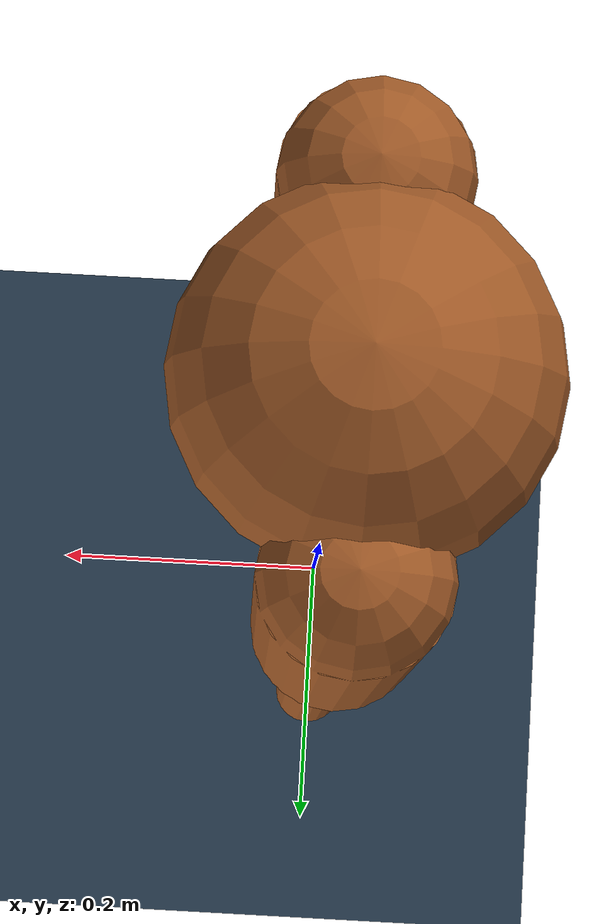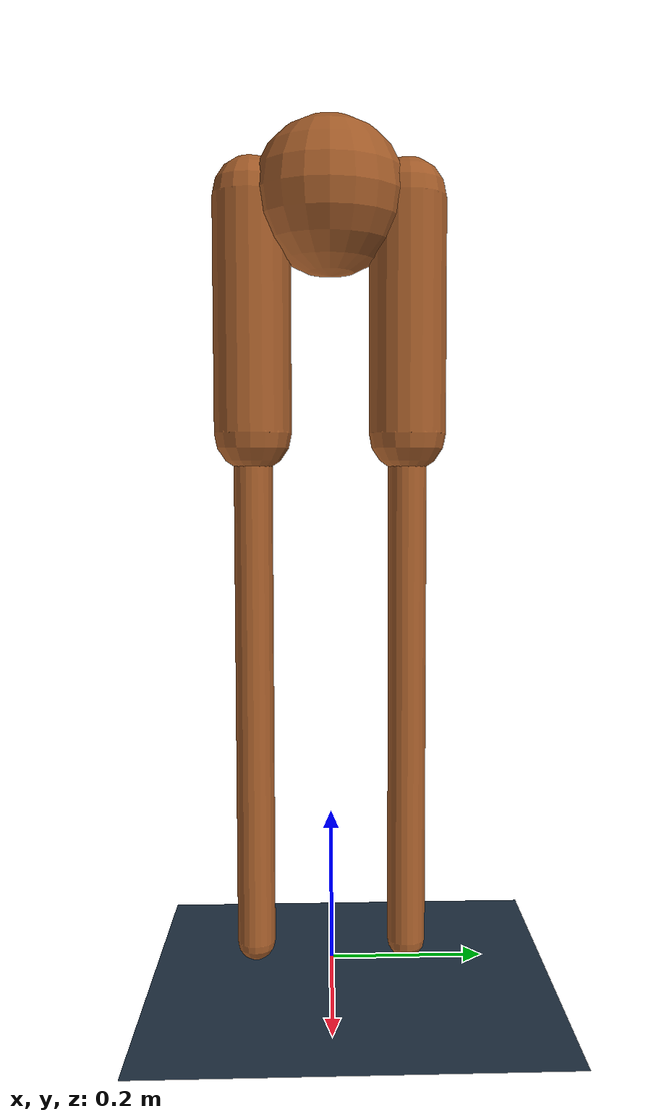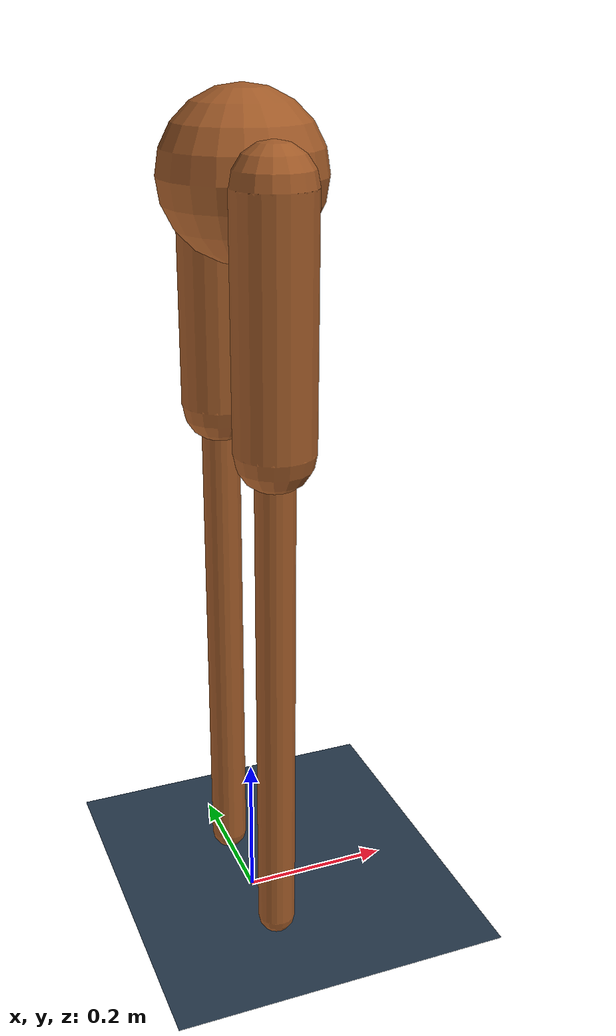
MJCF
<mujoco model='planar-biped'>
  <compiler inertiafromgeom='false' angle='radian' eulerseq='zyx'/>

  <default>
    <joint limited='true'/>
    <motor forcelimited='true'/>
    <geom contype='0' conaffinity='0' condim='1' material='geom'/>
    <!-- margin='0.001' solref='.02 1' solimp='.8 .8 .01' -->
  </default>

  <option timestep='0.002' iterations='50' solver='PGS'>
  </option>

  <size nuser_geom='1'/>

  <visual>
    <map fogstart='3' fogend='5' force='0.1' znear='0.5'/>
    <quality shadowsize='2048' offsamples='8'/>
    <global offwidth='800' offheight='800'/>
  </visual>

  <asset>
    <texture type='skybox' builtin='gradient' width='128' height='128' rgb1='.4 .6 .8' rgb2='0 0 0'/>
    <texture name='texgeom' type='cube' builtin='flat' mark='cross' width='127' height='1278' rgb1='0.8 0.6 0.4' rgb2='0.8 0.6 0.4' markrgb='1 1 1' random='0.01'/>
    <texture name='texground' type='2d' builtin='checker' rgb1='.2 .3 .4' rgb2='.1 0.15 0.2' width='512' height='512'/>
    <material name='ground' texture='texground' texrepeat='1 1' texuniform='true' reflectance='0.1'/>
    <material name='geom' rgba='0.8 0.6 0.4 1' texture='texgeom' texuniform='true'/>
  </asset>

  <worldbody>
    <geom name='floor' type='plane' pos='0 0 0' size='10 5 .125' material='ground' condim='3' conaffinity='1'/>
    <light mode='fixed' directional='true' diffuse='.8 .8 .8' specular='0.3 0.3 0.3' pos='0 0 100.0' dir='0 0 -1'/>

    <body name='pelvis' pos='0 0 1'>
      <camera name='tracking' pos='0 -3 0.3' euler='0 0 1.2708' mode='trackcom'/>
      <joint type='slide' axis='1 0 0' limited='false'/>
      <joint type='slide' axis='0 0 1' ref='1' limited='false'/>
      <joint type='hinge' axis='0 -1 0' limited='false'/>
      <geom type='sphere' size='0.1' contype='1'/>
      <inertial pos='0 0 0' mass='30' diaginertia='0.3 0.3 0.3'/>
      <body name='right_hip' pos='0 -0.1 0'>
        <inertial pos='0 0 0' mass='1e-6' diaginertia='1e-6 1e-6 1e-6'/>
        <joint name='right_angle' type='hinge' axis='0 -1 0' range='-1.5 1.5' damping='0.1' armature='0.256'/>
        <geom type='capsule' fromto='0 0 0 0 0 -0.3' size='0.05'/>
        <body name='right_angle_spring' pos='0 0 0'>
          <inertial pos='0 0 0' mass='1e-6' diaginertia='1e-6 1e-6 1e-6'/>
          <joint name='right_angle_spring' type='hinge' axis='0 -1 0' limited='false' stiffness='1e4' damping='1e2'/>
          <body name='right_length_spring' pos='0 0 0'>
            <inertial pos='0 0 0' mass='1e-6' diaginertia='1e-6 1e-6 1e-6'/>
            <joint name='right_length' type='slide' axis='0 0 -1' range='0.3 1' ref='1' damping='0.1' armature='2.304'/>
            <body name='right_leg' pos='0 0 -1'>
              <inertial pos='0 0 0' mass='0.4' diaginertia='1e-6 1e-6 1e-6'/>
              <joint name='right_length_spring' type='slide' axis='0 0 -1' limited='false' stiffness='1e4' damping='1e2'/>
              <geom type='capsule' fromto='0 0 0.025 0 0 0.7' size='0.025' contype='1'/>
            </body>
          </body>
        </body>
      </body>
      <body name='left_hip' pos='0 0.1 0'>
        <inertial pos='0 0 0' mass='1e-6' diaginertia='1e-6 1e-6 1e-6'/>
        <joint name='left_angle' type='hinge' axis='0 -1 0' range='-1.5 1.5' damping='0.1' armature='0.256'/>
        <geom type='capsule' fromto='0 0 0 0 0 -0.3' size='0.05'/>
        <body name='left_angle_spring' pos='0 0 0'>
          <inertial pos='0 0 0' mass='1e-6' diaginertia='1e-6 1e-6 1e-6'/>
          <joint name='left_angle_spring' type='hinge' axis='0 -1 0' limited='false' stiffness='1e4' damping='1e2'/>
          <body name='left_length_spring' pos='0 0 0'>
            <inertial pos='0 0 0' mass='1e-6' diaginertia='1e-6 1e-6 1e-6'/>
            <joint name='left_length' type='slide' axis='0 0 -1' range='0.3 1' ref='1' damping='0.1' armature='2.304'/>
            <body name='left_leg' pos='0 0 -1'>
              <inertial pos='0 0 0' mass='0.4' diaginertia='1e-6 1e-6 1e-6'/>
              <joint name='left_length_spring' type='slide' axis='0 0 -1' limited='false' stiffness='1e4' damping='1e2'/>
              <geom type='capsule' fromto='0 0 0.025 0 0 0.7' size='0.025' contype='1'/>
            </body>
          </body>
        </body>
      </body>
    </body>

  </worldbody>

  <actuator>
    <motor name='right_angle_p' joint='right_angle' forcerange='-192 192'/>
    <motor name='right_length_p' joint='right_length' forcerange='-576 576'/>
    <motor name='left_angle_p' joint='left_angle' forcerange='-192 192'/>
    <motor name='left_length_p' joint='left_length' forcerange='-576 576'/>
  </actuator>

</mujoco>
